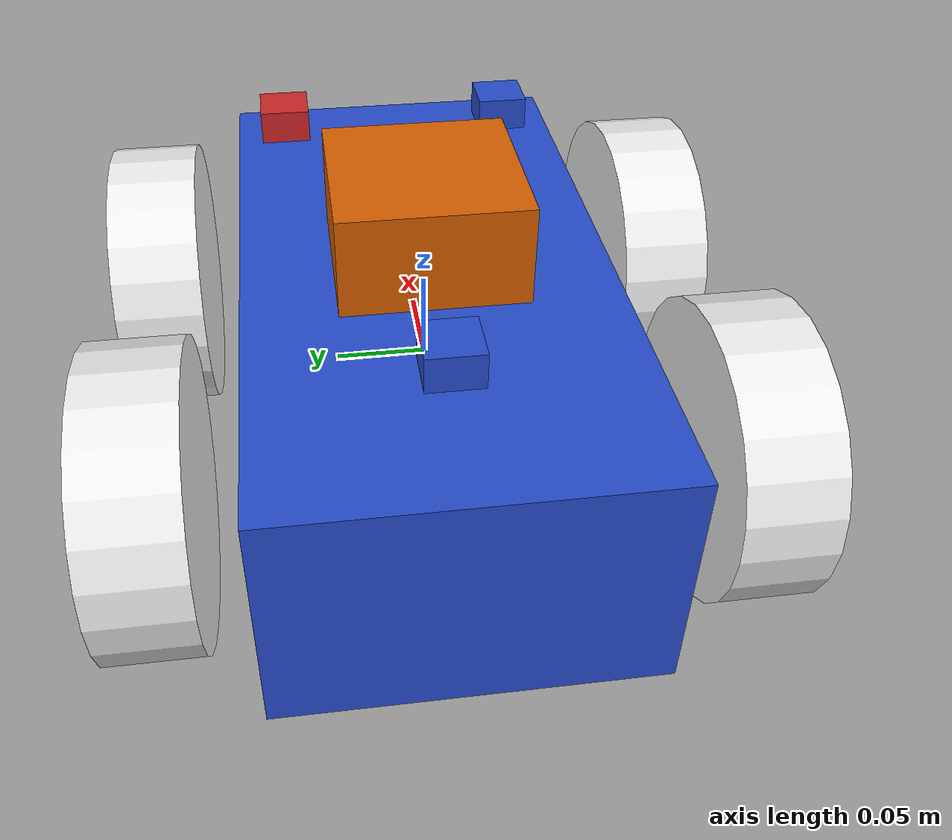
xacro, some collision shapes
<?xml version='1.0'?>

<robot name="myrobot" xmlns:xacro="http://www.ros.org/wiki/xacro">

  <xacro:property name="cameraSize" value="0.03"/>
  <xacro:property name="cameraMass" value="0.1"/>
  <xacro:property name="camera_link" value="0.03" />

  <xacro:include filename="$(find mybot_description)/urdf/mybot.gazebo" />
  <xacro:include filename="$(find mybot_description)/urdf/materials.xacro" />
  <xacro:include filename="$(find mybot_description)/urdf/macros.xacro" />

  <link name='chassis'>
    <pose>0 0 0.1 0 0 0</pose>

    <inertial>
      <mass value="5.0"/>
      <origin xyz="0.0 0 0.1" rpy=" 0 0 0"/>
      <inertia
          ixx="0.1" ixy="0" ixz="0"
          iyy="0.1" iyz="0"
          izz="0.1"
      />
    </inertial>

    <collision name='collision'>
      <geometry>
        <box size=".38 .2 .13"/>
      </geometry>
    </collision>

    <visual name='chassis_visual'>
      <origin xyz="0 0 0" rpy=" 0 0 0"/>
      <geometry>
        <box size=".38 .2 .13"/>
      </geometry>
    </visual>
</link>

  <link name="left_back_wheel">
    <!--origin xyz="0.1 0.13 0.1" rpy="0 1.5707 1.5707"/-->
    <collision name="collision">
      <origin xyz="0 0 0" rpy="0 1.5707 1.5707"/>
      <geometry>
        <cylinder radius="0.08" length="0.05"/>
      </geometry>
    </collision>
    <visual name="left_back_wheel_visual">
      <origin xyz="0 0 0" rpy="0 1.5707 1.5707"/>
      <geometry>
        <cylinder radius="0.08" length="0.05"/>
      </geometry>
    </visual>
    <inertial>
      <origin xyz="0 0 0" rpy="0 1.5707 1.5707"/>
      <mass value="5"/>
      <inertia
        ixx=".1" ixy="0.0" ixz="0.0"
        iyy=".1" iyz="0.0"
        izz=".1"/>
    </inertial>
  </link>

  <link name="right_back_wheel">
    <!--origin xyz="0.1 -0.13 0.1" rpy="0 1.5707 1.5707"/-->
    <collision name="collision">
      <origin xyz="0 0 0" rpy="0 1.5707 1.5707"/>
      <geometry>
        <cylinder radius="0.08" length="0.05"/>
      </geometry>

    </collision>
    <visual name="right_back_wheel_visual">
      <origin xyz="0 0 0" rpy="0 1.5707 1.5707"/>
      <geometry>
        <cylinder radius="0.08" length="0.05"/>
      </geometry>
    </visual>
    <inertial>
      <origin xyz="0 0 0" rpy="0 1.5707 1.5707"/>
      <mass value="5"/>
      <inertia
        ixx=".1" ixy="0.0" ixz="0.0"
        iyy=".1" iyz="0.0"
        izz=".1"/>
    </inertial>
  </link>

  <link name="left_front_wheel">
    <!--origin xyz="0.1 0.13 0.1" rpy="0 1.5707 1.5707"/-->
    <collision name="collision">
      <origin xyz="0 0 0" rpy="0 1.5707 1.5707"/>
      <geometry>
        <cylinder radius="0.08" length="0.05"/>
      </geometry>

    </collision>
    <visual name="left_front_wheel_visual">
      <origin xyz="0 0 0" rpy="0 1.5707 1.5707"/>
      <geometry>
        <cylinder radius="0.08" length="0.05"/>
      </geometry>
    </visual>
    <inertial>
      <origin xyz="0 0 0" rpy="0 1.5707 1.5707"/>
      <mass value="5"/>
      <inertia
        ixx=".1" ixy="0.0" ixz="0.0"
        iyy=".1" iyz="0.0"
        izz=".1"/>
    </inertial>
  </link>

  <link name="right_front_wheel">
    <!--origin xyz="0.1 -0.13 0.1" rpy="0 1.5707 1.5707"/-->
    <collision name="collision">
      <origin xyz="0 0 0" rpy="0 1.5707 1.5707"/>
      <geometry>
        <cylinder radius="0.08" length="0.05"/>
      </geometry>

    </collision>
    <visual name="right_front_wheel_visual">
      <origin xyz="0 0 0" rpy="0 1.5707 1.5707"/>
      <geometry>
        <cylinder radius="0.08" length="0.05"/>
      </geometry>
    </visual>
    <inertial>
      <origin xyz="0 0 0" rpy="0 1.5707 1.5707"/>
      <mass value="5"/>
      <inertia
        ixx=".1" ixy="0.0" ixz="0.0"
        iyy=".1" iyz="0.0"
        izz=".1"/>
    </inertial>
  </link>

  <joint type="continuous" name="left_back_wheel_hinge">
    <origin xyz="-0.1 0.15 0" rpy="0 0 0"/>
    <!--origin xyz="0.1 0.13 0" rpy="0 1.5707 1.5707"/-->
    <child link="left_back_wheel"/>
    <parent link="chassis"/>
    <axis xyz="0 1 0" rpy="0 0 0"/>
    <limit effort="10000" velocity="1000"/>
  </joint>

  <joint type="continuous" name="right_back_wheel_hinge">
    <origin xyz="-0.1 -0.15 0" rpy="0 0 0"/>
    <!--origin xyz="0.1 -0.13 0" rpy="0 1.5707 1.5707"/-->
    <child link="right_back_wheel"/>
    <parent link="chassis"/>
    <axis xyz="0 1 0" rpy="0 0 0"/>
    <limit effort="10000" velocity="1000"/>
  </joint>

 <joint type="continuous" name="left_front_wheel_hinge">
    <origin xyz="0.1 0.15 0" rpy="0 0 0"/>
    <!--origin xyz="0.1 0.13 0" rpy="0 1.5707 1.5707"/-->
    <child link="left_front_wheel"/>
    <parent link="chassis"/>
    <axis xyz="0 1 0" rpy="0 0 0"/>
    <limit effort="10000" velocity="1000"/>
  </joint>

  <joint type="continuous" name="right_front_wheel_hinge">
    <origin xyz="0.1 -0.15 0" rpy="0 0 0"/>
    <!--origin xyz="0.1 -0.13 0" rpy="0 1.5707 1.5707"/-->
    <child link="right_front_wheel"/>
    <parent link="chassis"/>
    <axis xyz="0 1 0" rpy="0 0 0"/>
    <limit effort="10000" velocity="1000"/>
  </joint>

 <joint name="hokuyo_joint" type="fixed">
    <axis xyz="0 1 0" />
    <origin xyz="0 0 0.07" rpy="0 0 0"/>
    <parent link="chassis"/>
    <child link="hokuyo_link"/>
  </joint>

  <!-- Hokuyo Laser -->
  <link name="hokuyo_link">
    <collision>
      <origin xyz="0 0 0" rpy="0 0 0"/>
      <geometry>
    <box size="0.1 0.1 0.1"/>
      </geometry>
    </collision>

    <visual>
      <origin xyz="0.17 0 0" rpy="0 0 0"/>
      <geometry>
        <mesh filename="package://mybot_description/meshes/hokuyo.dae"/>
      </geometry>
    </visual>

    <inertial>
      <mass value="1e-5" />
      <origin xyz="0 0 0" rpy="0 0 0"/>
      <inertia ixx="1e-6" ixy="0" ixz="0" iyy="1e-6" iyz="0" izz="1e-6" />
    </inertial>
  </link>

 <joint name="camera_joint" type="fixed">
    <axis xyz="0 1 0" />
    <origin xyz="0.16 0.07 0.07" rpy="0 0 0"/>
    <parent link="chassis"/>
    <child link="camera_link"/>
  </joint>

  <!-- Camera -->
  <link name="camera_link">
    <collision>
      <origin xyz="0 0 0" rpy="0 0 0"/>
      <geometry>
	<box size="${camera_link} ${camera_link} ${camera_link}"/>
      </geometry>
    </collision>

    <visual>
      <origin xyz="0 0 0" rpy="0 0 0"/>
      <geometry>
	  <box size="${camera_link} ${camera_link} ${camera_link}"/>
      </geometry>
      <material name="red"/>
    </visual>

    <inertial>
      <mass value="1e-5" />
      <origin xyz="0 0 0" rpy="0 0 0"/>
      <inertia ixx="1e-6" ixy="0" ixz="0" iyy="1e-6" iyz="0" izz="1e-6" />
    </inertial>
  </link>

   <link name="camera2">
        <collision>
          <origin xyz="0 0 0" rpy="0 0 0"/>
          <geometry>
            <box size="${cameraSize} ${cameraSize} ${cameraSize}"/>
          </geometry>
        </collision>

        <visual>
          <origin xyz="0 0 0" rpy="0 0 0"/>
          <geometry>
            <box size="${cameraSize} ${cameraSize} ${cameraSize}"/>
          </geometry>
          <material name="blue"/>
        </visual>

        <inertial>
          <mass value="${cameraMass}" />
          <origin xyz="0 0 0" rpy="0 0 0"/>
          <box_inertia m="${cameraMass}" x="${cameraSize}" y="${cameraSize}" z="${cameraSize}" />
        </inertial>
    </link>

    <joint name="camera_joint2" type="fixed">
        <parent link="chassis"/>
        <child link="camera2"/>
        <origin xyz="0.16 -0.07 0.07" rpy="0.0 0.0 0.0"/>
    </joint>

     <link name="depth_cam">
        <collision>
          <origin xyz="0 0 0" rpy="0 0 0"/>
          <geometry>
            <box size="${cameraSize} ${cameraSize} ${cameraSize}"/>
          </geometry>
        </collision>

        <visual>
          <origin xyz="0 0 0" rpy="0 0 0"/>
          <geometry>
            <box size="${cameraSize} ${cameraSize} ${cameraSize}"/>
          </geometry>
          <material name="blue"/>
        </visual>

        <inertial>
          <mass value="${cameraMass}" />
          <origin xyz="0 0 0" rpy="0 0 0"/>
          <box_inertia m="${cameraMass}" x="${cameraSize}" y="${cameraSize}" z="${cameraSize}" />
        </inertial>
    </link>

    <joint name="depth_cam_joint" type="fixed">
        <parent link="chassis"/>
        <child link="depth_cam"/>
        <origin xyz="-0.10 0.0 0.07" rpy="0.0 0.0 0.0"/>
    </joint>

  <link name="imu_link">
        <collision>
          <origin xyz="0 0 0" rpy="0 0 0"/>
          <geometry>
            <box size="0.03 0.03 0.03}"/>
          </geometry>
        </collision>

        <visual>
          <origin xyz="0 0 0" rpy="0 0 0"/>
          <geometry>
            <box size="0.03 0.03 0.03"/>
          </geometry>
          <material name="red"/>
        </visual>

        <inertial>
          <mass value="0.1" />
          <origin xyz="0 0 0" rpy="0 0 0"/>
          <box_inertia m="0.1" x="0.03" y="0.03" z="0.03" />
        </inertial>
    </link>
    <joint name="imu_joint" type="fixed">
        <parent link="chassis"/>
        <child link="imu_link"/>
        <origin xyz="-0.03 0 0.07" rpy="0 0 0"/>
    </joint>

     <link name="kinect">
      <origin xyz="0 0 0" rpy="0 0 0"/>
      <visual>
        <origin xyz="0 -0.16 0.1" rpy="0 0 0"/>
        <geometry>
          <mesh filename="package://mybot_description/meshes/kinect.dae" />
        </geometry>
      </visual>
      <collision>
        <geometry>
          <box size="0.07 0.3 0.09"/>
        </geometry>
      </collision>
     </link>

      <joint name="kinect_joint" type="fixed">
      <origin xyz="0 0 0" rpy="0 0 -1.5708"/>
      <parent link="chassis"/>
      <child link="kinect"/>
    </joint>

<transmission name="$left_front_trans">
  <type>transmission_interface/SimpleTransmission</type>
  <joint name="$left_front_wheel_hinge">
  <hardwareInterface>EffortJointInterface</hardwareInterface>
  </joint>
  <actuator name="$left_front_Motor">
    <hardwareInterface>EffortJointInterface</hardwareInterface>
    <mechanicalReduction>10</mechanicalReduction>
  </actuator>
</transmission>

<transmission name="$left_back_trans">
  <type>transmission_interface/SimpleTransmission</type>
  <joint name="$left_back_wheel_hinge">
  <hardwareInterface>EffortJointInterface</hardwareInterface>
  </joint>
  <actuator name="$left_back_Motor">
    <hardwareInterface>EffortJointInterface</hardwareInterface>
    <mechanicalReduction>10</mechanicalReduction>
  </actuator>
</transmission>

<transmission name="$right_back_trans">
  <type>transmission_interface/SimpleTransmission</type>
  <joint name="$right_back_wheel_hinge">
  <hardwareInterface>EffortJointInterface</hardwareInterface>
  </joint>
  <actuator name="$right_back_Motor">
    <hardwareInterface>EffortJointInterface</hardwareInterface>
    <mechanicalReduction>10</mechanicalReduction>
  </actuator>
</transmission>

<transmission name="$right_front_trans">
  <type>transmission_interface/SimpleTransmission</type>
  <joint name="$right_front_wheel_hinge">
  <hardwareInterface>EffortJointInterface</hardwareInterface>
  </joint>
  <actuator name="$right_front_Motor">
    <hardwareInterface>EffortJointInterface</hardwareInterface>
    <mechanicalReduction>10</mechanicalReduction>
  </actuator>
</transmission>

</robot>

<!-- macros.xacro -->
<robot name="mybot" xmlns:xacro="http://www.ros.org/wiki/xacro">
<macro name="cylinder_inertia" params="m r h">
  <inertia  ixx="${m*(3*r*r+h*h)/12}" ixy = "0" ixz = "0"
    iyy="${m*(3*r*r+h*h)/12}" iyz = "0"
    izz="${m*r*r/2}"
  />
</macro>

<macro name="box_inertia" params="m x y z">
  <inertia  ixx="${m*(y*y+z*z)/12}" ixy = "0" ixz = "0"
    iyy="${m*(x*x+z*z)/12}" iyz = "0"
    izz="${m*(x*x+z*z)/12}"
  />
</macro>

<macro name="sphere_inertia" params="m r">
  <inertia  ixx="${2*m*r*r/5}" ixy = "0" ixz = "0"
    iyy="${2*m*r*r/5}" iyz = "0"
    izz="${2*m*r*r/5}"
  />
</macro>

<macro name="wheel" params="lr tY">

<link name="${lr}_wheel">
  <collision>
    <origin xyz="0 0 0" rpy="0 ${PI/2} ${PI/2}" />
    <geometry>
      <cylinder length="${wheelWidth}" radius="${wheelRadius}"/>
    </geometry>
  </collision>

  <visual>
    <origin xyz="0 0 0" rpy="0 ${PI/2} ${PI/2}" />
    <geometry>
      <cylinder length="${wheelWidth}" radius="${wheelRadius}"/>
    </geometry>
    <material name="black"/>
  </visual>

  <inertial>
    <origin xyz="0 0 0" rpy="0 ${PI/2} ${PI/2}" />
    <mass value="${wheelMass}"/>
    <cylinder_inertia m="${wheelMass}" r="${wheelRadius}" h="${wheelWidth}"/>
  </inertial>
</link>

<gazebo reference="${lr}_wheel">
  <mu1 value="1.0"/>
  <mu2 value="1.0"/>
  <kp  value="10000000.0" />
  <kd  value="1.0" />
  <fdir1 value="1 0 0"/>
  <material name="white"/>
</gazebo>

<joint name="${lr}_wheel_hinge" type="continuous">
  <parent link="chassis"/>
  <child link="${lr}_wheel"/>
<origin xyz="${-wheelPos+chassisLength/2} ${tY*wheelWidth/2+tY*chassisWidth/2} ${wheelRadius}" rpy="0 0 0" />
  <axis xyz="0 1 0" rpy="0 0 0" />
  <limit effort="100" velocity="10000"/>
  <joint_properties damping="0.0" friction="10550.0"/>
</joint>

<transmission name="${lr}_trans">
  <type>transmission_interface/SimpleTransmission</type>
  <joint name="${lr}_wheel_hinge"/>
  <actuator name="${lr}_Motor">
    <hardwareInterface>EffortJointInterface</hardwareInterface>
    <mechanicalReduction>10</mechanicalReduction>
  </actuator>
</transmission>

</macro>
</robot>
